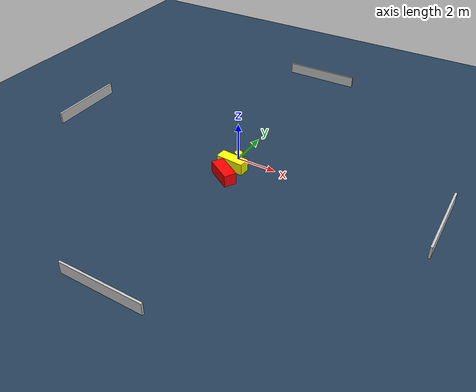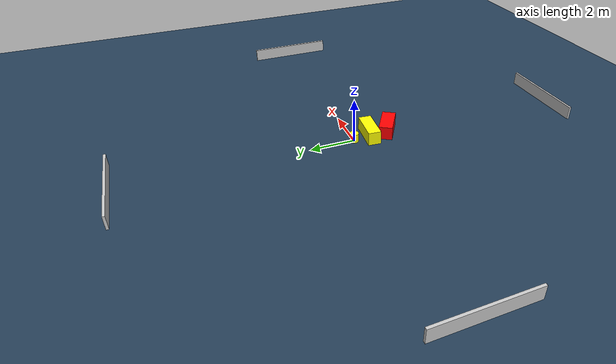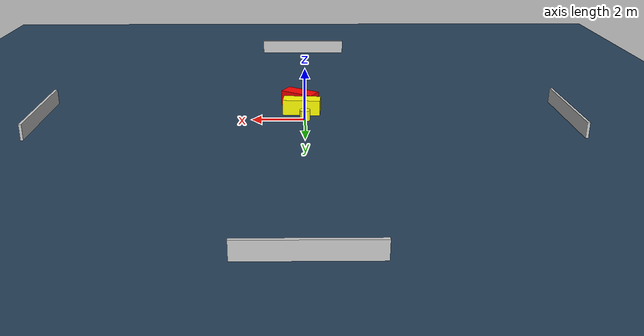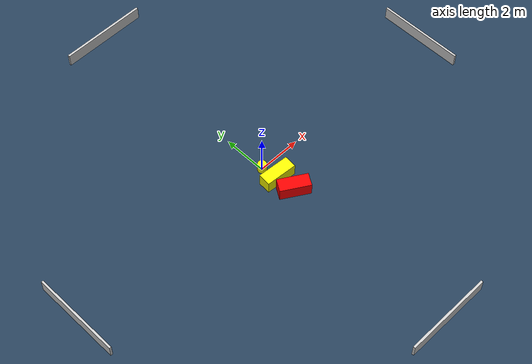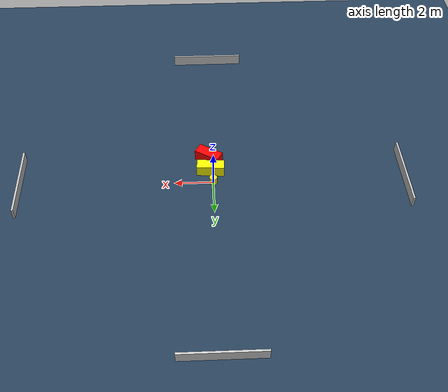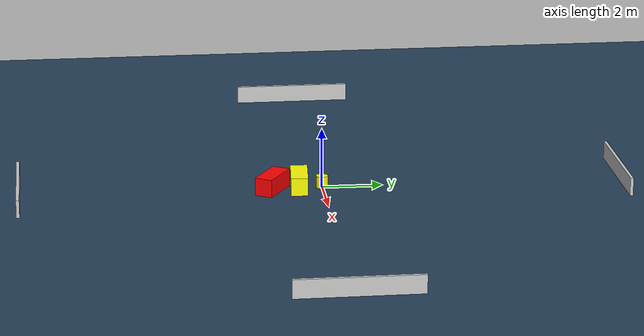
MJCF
<?xml version="1.0" ?>
<mujoco model="generated_environment">
  <option timestep="0.01" integrator="RK4" cone="elliptic"/>
  <default>
    <geom density="1"/>
  </default>
  <asset>
    <texture builtin="gradient" height="3072" name="skybox" rgb1="0.3 0.5 0.7" rgb2="0 0 0" type="skybox" width="512"/>
    <texture builtin="checker" height="300" name="groundplane" rgb1="0.2 0.3 0.4" rgb2="0.1 0.2 0.3" type="2d" width="300"/>
    <material name="groundplane" reflectance="0.2" texrepeat="5 5" texture="groundplane"/>
  </asset>
  <worldbody>
    <light dir="0 0 -1" directional="true" pos="0 0 1.5"/>
    <geom condim="3" friction="0.5 0.005 0.001" material="groundplane" name="floor" pos="0 0 0" size="0 0 0.05" type="plane"/>
    <body name="walls">
      <geom name="wall_1" condim="4" pos="-10.0 0.0 0.3" rgba="0.800000011920929 0.800000011920929 0.800000011920929 1.0" size="0.05 2.0 0.3" type="box"/>
      <geom name="wall_2" condim="4" pos="10.0 0.0 0.3" rgba="0.800000011920929 0.800000011920929 0.800000011920929 1.0" size="0.05 2.0 0.3" type="box"/>
      <geom name="wall_3" condim="4" pos="0.0 -10.0 0.3" rgba="0.800000011920929 0.800000011920929 0.800000011920929 1.0" size="2.0 0.05 0.3" type="box"/>
      <geom name="wall_4" condim="4" pos="0.0 10.0 0.3" rgba="0.800000011920929 0.800000011920929 0.800000011920929 1.0" size="2.0 0.05 0.3" type="box"/>
    </body>
    <body name="robot">
      <joint name="joint_x" type="slide" pos="0 0 0" axis="1 0 0"/>
      <joint name="joint_y" type="slide" pos="0 0 0" axis="0 1 0"/>
      <geom name="robot" type="cylinder" pos="0.0 0.0 0.2" size="0.2 0.2 0.0" mass="5.0" friction="1.0 0.005 0.0001" condim="4" rgba="1.0 1.0 0.0 1.0"/>
    </body>
    <body name="obstacle_1_movable">
      <geom name="obstacle_1_movable" condim="4" pos="0.11109984156344938 -0.7699240139582787 0.3" euler="0 0 355.417047386752" friction="0.0 0.005 0.001" rgba="1.0 1.0 0.0 1.0" size="0.7142630622313004 0.284772899576036 0.3" type="box" mass="0.1"/>
      <joint type="free"/>
    </body>
    <body name="obstacle_2_static">
      <geom name="obstacle_2_static" condim="4" pos="0.1779954245379914 -1.6629145311134983 0.3" euler="0 0 58.3559561462144" friction="0.0 0.005 0.001" rgba="1.0 0.0 0.0 1.0" size="0.30199215455320344 0.6793445609033024 0.3" type="box"/>
    </body>
  </worldbody>
  <actuator>
    <motor name="actuator_x" joint="joint_x" gear="1" ctrlrange="-1 1"/>
    <motor name="actuator_y" joint="joint_y" gear="1" ctrlrange="-1 1"/>
  </actuator>
</mujoco>
